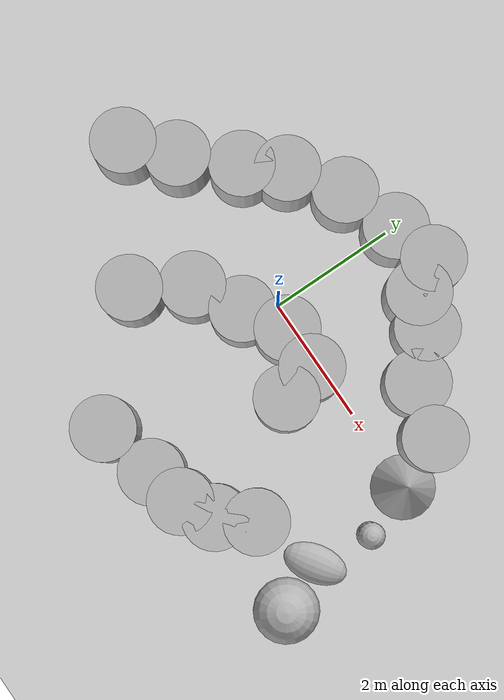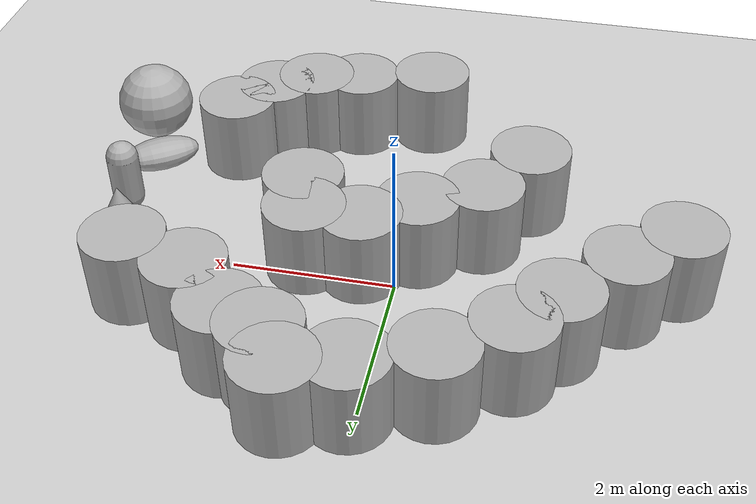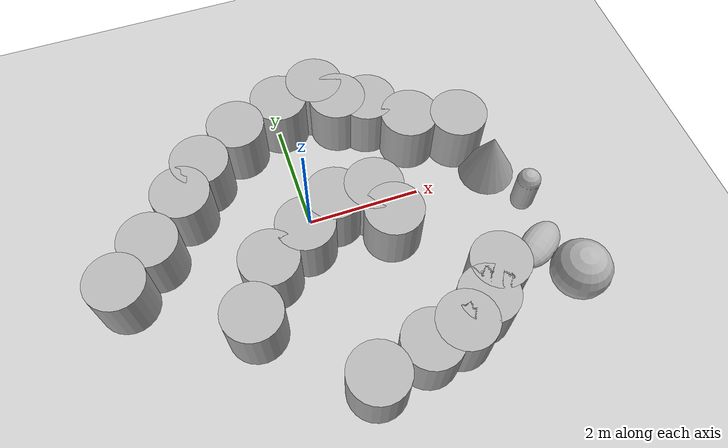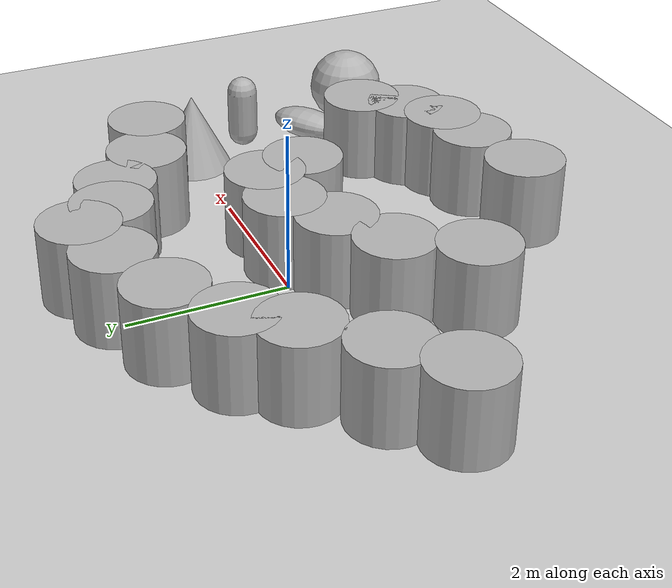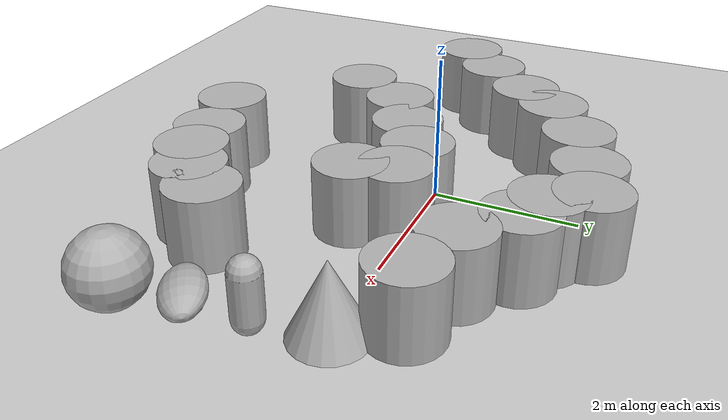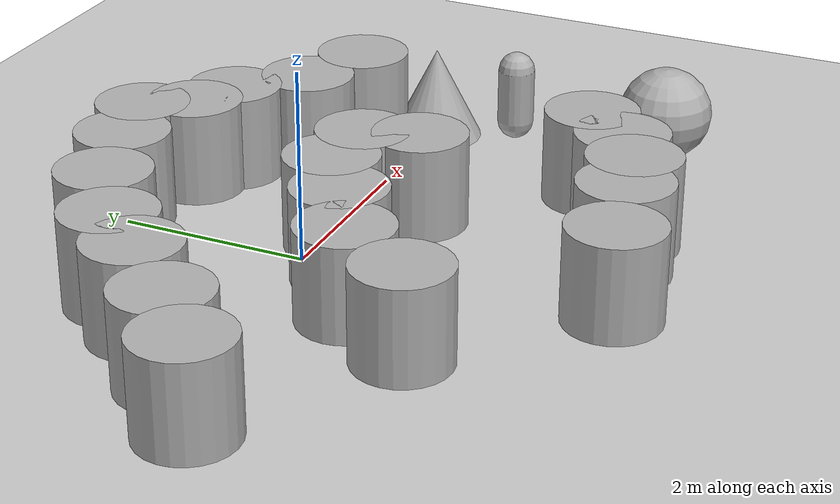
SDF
<sdf version='1.12'>
  <world name='empty'>
    <plugin filename="gz-sim-physics-system" name="gz::sim::systems::Physics"/>
    <plugin filename="gz-sim-user-commands-system" name="gz::sim::systems::UserCommands"/>
    <plugin filename="gz-sim-scene-broadcaster-system" name="gz::sim::systems::SceneBroadcaster"/>
    <plugin filename="gz-sim-sensors-system" name="gz::sim::systems::Sensors"/>
    <plugin filename="gz-sim-contact-system" name="gz::sim::systems::Contact"/>

    <physics name='1ms' type='ignored'>
      <max_step_size>0.001</max_step_size>
      <real_time_factor>1</real_time_factor>
      <real_time_update_rate>1000</real_time_update_rate>
    </physics>
    <plugin name='gz::sim::systems::Physics' filename='gz-sim-physics-system'/>
    <plugin name='gz::sim::systems::UserCommands' filename='gz-sim-user-commands-system'/>
    <plugin name='gz::sim::systems::SceneBroadcaster' filename='gz-sim-scene-broadcaster-system'/>
    <plugin name='gz::sim::systems::Contact' filename='gz-sim-contact-system'/>
    <gravity>0 0 -9.8000000000000007</gravity>
    <magnetic_field>5.5644999999999998e-06 2.2875799999999999e-05 -4.2388400000000002e-05</magnetic_field>
    <atmosphere type='adiabatic'/>
    <scene>
      <ambient>0.400000006 0.400000006 0.400000006 1</ambient>
      <background>0.699999988 0.699999988 0.699999988 1</background>
      <shadows>true</shadows>
    </scene>
    <model name='ground_plane'>
      <static>true</static>
      <link name='link'>
        <collision name='collision'>
          <geometry>
            <plane>
              <normal>0 0 1</normal>
              <size>100 100</size>
            </plane>
          </geometry>
          <surface>
            <friction>
              <ode/>
            </friction>
            <bounce/>
            <contact/>
          </surface>
        </collision>
        <visual name='visual'>
          <geometry>
            <plane>
              <normal>0 0 1</normal>
              <size>100 100</size>
            </plane>
          </geometry>
          <material>
            <ambient>0.800000012 0.800000012 0.800000012 1</ambient>
            <diffuse>0.800000012 0.800000012 0.800000012 1</diffuse>
            <specular>0.800000012 0.800000012 0.800000012 1</specular>
          </material>
        </visual>
        <pose>0 0 0 0 0 0</pose>
        <inertial>
          <pose>0 0 0 0 0 0</pose>
          <mass>1</mass>
          <inertia>
            <ixx>1</ixx>
            <ixy>0</ixy>
            <ixz>0</ixz>
            <iyy>1</iyy>
            <iyz>0</iyz>
            <izz>1</izz>
          </inertia>
        </inertial>
        <enable_wind>false</enable_wind>
      </link>
      <pose>0 0 0 0 0 0</pose>
      <self_collide>false</self_collide>
    </model>
    <model name='cylinder'>
      <pose>-1.9762860932259134 0.69040135329029173 0.49999909530379527 7.8007198747807744e-07 -2.2047766724975244e-06 0.011959792262678981</pose>
      <link name='cylinder_link'>
        <inertial>
          <inertia>
            <ixx>0.14580000000000001</ixx>
            <ixy>0</ixy>
            <ixz>0</ixz>
            <iyy>0.14580000000000001</iyy>
            <iyz>0</iyz>
            <izz>0.125</izz>
          </inertia>
          <mass>1</mass>
          <pose>0 0 0 0 0 0</pose>
        </inertial>
        <collision name='cylinder_collision'>
          <geometry>
            <cylinder>
              <radius>0.5</radius>
              <length>1</length>
            </cylinder>
          </geometry>
          <surface>
            <friction>
              <ode/>
            </friction>
            <bounce/>
            <contact/>
          </surface>
        </collision>
        <visual name='cylinder_visual'>
          <geometry>
            <cylinder>
              <radius>0.5</radius>
              <length>1</length>
            </cylinder>
          </geometry>
          <material>
            <ambient>0.300000012 0.300000012 0.300000012 1</ambient>
            <diffuse>0.699999988 0.699999988 0.699999988 1</diffuse>
            <specular>1 1 1 1</specular>
          </material>
        </visual>
        <pose>0 0 0 0 0 0</pose>
        <enable_wind>false</enable_wind>
      </link>
      <static>false</static>
      <self_collide>false</self_collide>
    </model>
    <model name='cylinder_0'>
      <pose>-2.6429733115350551 -0.013809797040746252 0.49999569121287812 4.005344996797173e-06 -5.5513292539265226e-06 0.0046162359971371227</pose>
      <link name='cylinder_link'>
        <inertial>
          <inertia>
            <ixx>0.14580000000000001</ixx>
            <ixy>0</ixy>
            <ixz>0</ixz>
            <iyy>0.14580000000000001</iyy>
            <iyz>0</iyz>
            <izz>0.125</izz>
          </inertia>
          <mass>1</mass>
          <pose>0 0 0 0 0 0</pose>
        </inertial>
        <collision name='cylinder_collision'>
          <geometry>
            <cylinder>
              <radius>0.5</radius>
              <length>1</length>
            </cylinder>
          </geometry>
          <surface>
            <friction>
              <ode/>
            </friction>
            <bounce/>
            <contact/>
          </surface>
        </collision>
        <visual name='cylinder_visual'>
          <geometry>
            <cylinder>
              <radius>0.5</radius>
              <length>1</length>
            </cylinder>
          </geometry>
          <material>
            <ambient>0.300000012 0.300000012 0.300000012 1</ambient>
            <diffuse>0.699999988 0.699999988 0.699999988 1</diffuse>
            <specular>1 1 1 1</specular>
          </material>
        </visual>
        <pose>0 0 0 0 0 0</pose>
        <enable_wind>false</enable_wind>
      </link>
      <static>false</static>
      <self_collide>false</self_collide>
    </model>
    <model name='cylinder_1'>
      <pose>-3.2558764979790302 -0.56998707025913842 0.50000138259239402 5.0220630579390469e-06 -3.9769352921638421e-06 -0.022826265024882546</pose>
      <link name='cylinder_link'>
        <inertial>
          <inertia>
            <ixx>0.14580000000000001</ixx>
            <ixy>0</ixy>
            <ixz>0</ixz>
            <iyy>0.14580000000000001</iyy>
            <iyz>0</iyz>
            <izz>0.125</izz>
          </inertia>
          <mass>1</mass>
          <pose>0 0 0 0 0 0</pose>
        </inertial>
        <collision name='cylinder_collision'>
          <geometry>
            <cylinder>
              <radius>0.5</radius>
              <length>1</length>
            </cylinder>
          </geometry>
          <surface>
            <friction>
              <ode/>
            </friction>
            <bounce/>
            <contact/>
          </surface>
        </collision>
        <visual name='cylinder_visual'>
          <geometry>
            <cylinder>
              <radius>0.5</radius>
              <length>1</length>
            </cylinder>
          </geometry>
          <material>
            <ambient>0.300000012 0.300000012 0.300000012 1</ambient>
            <diffuse>0.699999988 0.699999988 0.699999988 1</diffuse>
            <specular>1 1 1 1</specular>
          </material>
        </visual>
        <pose>0 0 0 0 0 0</pose>
        <enable_wind>false</enable_wind>
      </link>
      <static>false</static>
      <self_collide>false</self_collide>
    </model>
    <model name='cylinder_2'>
      <pose>-1.5365996924310779 1.2117122792620816 0.49999847086126498 1.0684121526571945e-06 4.1593079175355603e-06 0.0095072753371441918</pose>
      <link name='cylinder_link'>
        <inertial>
          <inertia>
            <ixx>0.14580000000000001</ixx>
            <ixy>0</ixy>
            <ixz>0</ixz>
            <iyy>0.14580000000000001</iyy>
            <iyz>0</iyz>
            <izz>0.125</izz>
          </inertia>
          <mass>1</mass>
          <pose>0 0 0 0 0 0</pose>
        </inertial>
        <collision name='cylinder_collision'>
          <geometry>
            <cylinder>
              <radius>0.5</radius>
              <length>1</length>
            </cylinder>
          </geometry>
          <surface>
            <friction>
              <ode/>
            </friction>
            <bounce/>
            <contact/>
          </surface>
        </collision>
        <visual name='cylinder_visual'>
          <geometry>
            <cylinder>
              <radius>0.5</radius>
              <length>1</length>
            </cylinder>
          </geometry>
          <material>
            <ambient>0.300000012 0.300000012 0.300000012 1</ambient>
            <diffuse>0.699999988 0.699999988 0.699999988 1</diffuse>
            <specular>1 1 1 1</specular>
          </material>
        </visual>
        <pose>0 0 0 0 0 0</pose>
        <enable_wind>false</enable_wind>
      </link>
      <static>false</static>
      <self_collide>false</self_collide>
    </model>
    <model name='cylinder_3'>
      <pose>-0.78632597206776556 1.7349095515431225 0.49999782776528706 5.0129090234880614e-06 -2.6312846825480979e-06 -0.011264135074391684</pose>
      <link name='cylinder_link'>
        <inertial>
          <inertia>
            <ixx>0.14580000000000001</ixx>
            <ixy>0</ixy>
            <ixz>0</ixz>
            <iyy>0.14580000000000001</iyy>
            <iyz>0</iyz>
            <izz>0.125</izz>
          </inertia>
          <mass>1</mass>
          <pose>0 0 0 0 0 0</pose>
        </inertial>
        <collision name='cylinder_collision'>
          <geometry>
            <cylinder>
              <radius>0.5</radius>
              <length>1</length>
            </cylinder>
          </geometry>
          <surface>
            <friction>
              <ode/>
            </friction>
            <bounce/>
            <contact/>
          </surface>
        </collision>
        <visual name='cylinder_visual'>
          <geometry>
            <cylinder>
              <radius>0.5</radius>
              <length>1</length>
            </cylinder>
          </geometry>
          <material>
            <ambient>0.300000012 0.300000012 0.300000012 1</ambient>
            <diffuse>0.699999988 0.699999988 0.699999988 1</diffuse>
            <specular>1 1 1 1</specular>
          </material>
        </visual>
        <pose>0 0 0 0 0 0</pose>
        <enable_wind>false</enable_wind>
      </link>
      <static>false</static>
      <self_collide>false</self_collide>
    </model>
    <model name='cylinder_4'>
      <pose>0.78655141512589766 2.239844271421497 0.50000124387346956 -6.8727449360493471e-06 4.893297159177249e-06 0.016314562144688037</pose>
      <link name='cylinder_link'>
        <inertial>
          <inertia>
            <ixx>0.14580000000000001</ixx>
            <ixy>0</ixy>
            <ixz>0</ixz>
            <iyy>0.14580000000000001</iyy>
            <iyz>0</iyz>
            <izz>0.125</izz>
          </inertia>
          <mass>1</mass>
          <pose>0 0 0 0 0 0</pose>
        </inertial>
        <collision name='cylinder_collision'>
          <geometry>
            <cylinder>
              <radius>0.5</radius>
              <length>1</length>
            </cylinder>
          </geometry>
          <surface>
            <friction>
              <ode/>
            </friction>
            <bounce/>
            <contact/>
          </surface>
        </collision>
        <visual name='cylinder_visual'>
          <geometry>
            <cylinder>
              <radius>0.5</radius>
              <length>1</length>
            </cylinder>
          </geometry>
          <material>
            <ambient>0.300000012 0.300000012 0.300000012 1</ambient>
            <diffuse>0.699999988 0.699999988 0.699999988 1</diffuse>
            <specular>1 1 1 1</specular>
          </material>
        </visual>
        <pose>0 0 0 0 0 0</pose>
        <enable_wind>false</enable_wind>
      </link>
      <static>false</static>
      <self_collide>false</self_collide>
    </model>
    <model name='cylinder_5'>
      <pose>0.076821434768917826 2.0520209042307456 0.49999559303776342 3.8986044008958061e-06 -9.5678555833081369e-06 -0.0043199915631974865</pose>
      <link name='cylinder_link'>
        <inertial>
          <inertia>
            <ixx>0.14580000000000001</ixx>
            <ixy>0</ixy>
            <ixz>0</ixz>
            <iyy>0.14580000000000001</iyy>
            <iyz>0</iyz>
            <izz>0.125</izz>
          </inertia>
          <mass>1</mass>
          <pose>0 0 0 0 0 0</pose>
        </inertial>
        <collision name='cylinder_collision'>
          <geometry>
            <cylinder>
              <radius>0.5</radius>
              <length>1</length>
            </cylinder>
          </geometry>
          <surface>
            <friction>
              <ode/>
            </friction>
            <bounce/>
            <contact/>
          </surface>
        </collision>
        <visual name='cylinder_visual'>
          <geometry>
            <cylinder>
              <radius>0.5</radius>
              <length>1</length>
            </cylinder>
          </geometry>
          <material>
            <ambient>0.300000012 0.300000012 0.300000012 1</ambient>
            <diffuse>0.699999988 0.699999988 0.699999988 1</diffuse>
            <specular>1 1 1 1</specular>
          </material>
        </visual>
        <pose>0 0 0 0 0 0</pose>
        <enable_wind>false</enable_wind>
      </link>
      <static>false</static>
      <self_collide>false</self_collide>
    </model>
    <model name='cylinder_6'>
      <pose>1.0796420631324288 1.7763377961806321 0.50000019598924572 -3.8125318810145128e-07 -6.8935358275499052e-07 -0.0079551596541924639</pose>
      <link name='cylinder_link'>
        <inertial>
          <inertia>
            <ixx>0.14580000000000001</ixx>
            <ixy>0</ixy>
            <ixz>0</ixz>
            <iyy>0.14580000000000001</iyy>
            <iyz>0</iyz>
            <izz>0.125</izz>
          </inertia>
          <mass>1</mass>
          <pose>0 0 0 0 0 0</pose>
        </inertial>
        <collision name='cylinder_collision'>
          <geometry>
            <cylinder>
              <radius>0.5</radius>
              <length>1</length>
            </cylinder>
          </geometry>
          <surface>
            <friction>
              <ode/>
            </friction>
            <bounce/>
            <contact/>
          </surface>
        </collision>
        <visual name='cylinder_visual'>
          <geometry>
            <cylinder>
              <radius>0.5</radius>
              <length>1</length>
            </cylinder>
          </geometry>
          <material>
            <ambient>0.300000012 0.300000012 0.300000012 1</ambient>
            <diffuse>0.699999988 0.699999988 0.699999988 1</diffuse>
            <specular>1 1 1 1</specular>
          </material>
        </visual>
        <pose>0 0 0 0 0 0</pose>
        <enable_wind>false</enable_wind>
      </link>
      <static>false</static>
      <self_collide>false</self_collide>
    </model>
    <model name='cylinder_7'>
      <pose>-1.3814271443621475 -1.7208808653317076 0.50000188535532641 6.5285589071544028e-06 -2.7036633601598784e-06 0.0079402219255832098</pose>
      <link name='cylinder_link'>
        <inertial>
          <inertia>
            <ixx>0.14580000000000001</ixx>
            <ixy>0</ixy>
            <ixz>0</ixz>
            <iyy>0.14580000000000001</iyy>
            <iyz>0</iyz>
            <izz>0.125</izz>
          </inertia>
          <mass>1</mass>
          <pose>0 0 0 0 0 0</pose>
        </inertial>
        <collision name='cylinder_collision'>
          <geometry>
            <cylinder>
              <radius>0.5</radius>
              <length>1</length>
            </cylinder>
          </geometry>
          <surface>
            <friction>
              <ode/>
            </friction>
            <bounce/>
            <contact/>
          </surface>
        </collision>
        <visual name='cylinder_visual'>
          <geometry>
            <cylinder>
              <radius>0.5</radius>
              <length>1</length>
            </cylinder>
          </geometry>
          <material>
            <ambient>0.300000012 0.300000012 0.300000012 1</ambient>
            <diffuse>0.699999988 0.699999988 0.699999988 1</diffuse>
            <specular>1 1 1 1</specular>
          </material>
        </visual>
        <pose>0 0 0 0 0 0</pose>
        <enable_wind>false</enable_wind>
      </link>
      <static>false</static>
      <self_collide>false</self_collide>
    </model>
    <model name='cylinder_8'>
      <pose>-0.89915172950892397 -0.9228489590765433 0.49999813973350093 6.3691705166424526e-06 3.5784308867551583e-07 0.0046774452948128266</pose>
      <link name='cylinder_link'>
        <inertial>
          <inertia>
            <ixx>0.14580000000000001</ixx>
            <ixy>0</ixy>
            <ixz>0</ixz>
            <iyy>0.14580000000000001</iyy>
            <iyz>0</iyz>
            <izz>0.125</izz>
          </inertia>
          <mass>1</mass>
          <pose>0 0 0 0 0 0</pose>
        </inertial>
        <collision name='cylinder_collision'>
          <geometry>
            <cylinder>
              <radius>0.5</radius>
              <length>1</length>
            </cylinder>
          </geometry>
          <surface>
            <friction>
              <ode/>
            </friction>
            <bounce/>
            <contact/>
          </surface>
        </collision>
        <visual name='cylinder_visual'>
          <geometry>
            <cylinder>
              <radius>0.5</radius>
              <length>1</length>
            </cylinder>
          </geometry>
          <material>
            <ambient>0.300000012 0.300000012 0.300000012 1</ambient>
            <diffuse>0.699999988 0.699999988 0.699999988 1</diffuse>
            <specular>1 1 1 1</specular>
          </material>
        </visual>
        <pose>0 0 0 0 0 0</pose>
        <enable_wind>false</enable_wind>
      </link>
      <static>false</static>
      <self_collide>false</self_collide>
    </model>
    <model name='cylinder_9'>
      <pose>-0.1860328131376188 -0.51991396688890668 0.49999985104384348 1.5023880409608223e-07 -3.6131556412383512e-07 -0.00018278242512950678</pose>
      <link name='cylinder_link'>
        <inertial>
          <inertia>
            <ixx>0.14580000000000001</ixx>
            <ixy>0</ixy>
            <ixz>0</ixz>
            <iyy>0.14580000000000001</iyy>
            <iyz>0</iyz>
            <izz>0.125</izz>
          </inertia>
          <mass>1</mass>
          <pose>0 0 0 0 0 0</pose>
        </inertial>
        <collision name='cylinder_collision'>
          <geometry>
            <cylinder>
              <radius>0.5</radius>
              <length>1</length>
            </cylinder>
          </geometry>
          <surface>
            <friction>
              <ode/>
            </friction>
            <bounce/>
            <contact/>
          </surface>
        </collision>
        <visual name='cylinder_visual'>
          <geometry>
            <cylinder>
              <radius>0.5</radius>
              <length>1</length>
            </cylinder>
          </geometry>
          <material>
            <ambient>0.300000012 0.300000012 0.300000012 1</ambient>
            <diffuse>0.699999988 0.699999988 0.699999988 1</diffuse>
            <specular>1 1 1 1</specular>
          </material>
        </visual>
        <pose>0 0 0 0 0 0</pose>
        <enable_wind>false</enable_wind>
      </link>
      <static>false</static>
      <self_collide>false</self_collide>
    </model>
    <model name='cylinder_10'>
      <pose>0.42920838925753013 -0.13218409234552927 0.49999977906264004 -2.8792867144846917e-06 4.0647830910670031e-06 -0.0041092993602877981</pose>
      <link name='cylinder_link'>
        <inertial>
          <inertia>
            <ixx>0.14580000000000001</ixx>
            <ixy>0</ixy>
            <ixz>0</ixz>
            <iyy>0.14580000000000001</iyy>
            <iyz>0</iyz>
            <izz>0.125</izz>
          </inertia>
          <mass>1</mass>
          <pose>0 0 0 0 0 0</pose>
        </inertial>
        <collision name='cylinder_collision'>
          <geometry>
            <cylinder>
              <radius>0.5</radius>
              <length>1</length>
            </cylinder>
          </geometry>
          <surface>
            <friction>
              <ode/>
            </friction>
            <bounce/>
            <contact/>
          </surface>
        </collision>
        <visual name='cylinder_visual'>
          <geometry>
            <cylinder>
              <radius>0.5</radius>
              <length>1</length>
            </cylinder>
          </geometry>
          <material>
            <ambient>0.300000012 0.300000012 0.300000012 1</ambient>
            <diffuse>0.699999988 0.699999988 0.699999988 1</diffuse>
            <specular>1 1 1 1</specular>
          </material>
        </visual>
        <pose>0 0 0 0 0 0</pose>
        <enable_wind>false</enable_wind>
      </link>
      <static>false</static>
      <self_collide>false</self_collide>
    </model>
    <model name='cylinder_11'>
      <pose>1.1073928579156167 -0.15459871433947053 0.49999922662699875 -3.1109600371470438e-06 7.4498295820858495e-06 -0.014954746051568022</pose>
      <link name='cylinder_link'>
        <inertial>
          <inertia>
            <ixx>0.14580000000000001</ixx>
            <ixy>0</ixy>
            <ixz>0</ixz>
            <iyy>0.14580000000000001</iyy>
            <iyz>0</iyz>
            <izz>0.125</izz>
          </inertia>
          <mass>1</mass>
          <pose>0 0 0 0 0 0</pose>
        </inertial>
        <collision name='cylinder_collision'>
          <geometry>
            <cylinder>
              <radius>0.5</radius>
              <length>1</length>
            </cylinder>
          </geometry>
          <surface>
            <friction>
              <ode/>
            </friction>
            <bounce/>
            <contact/>
          </surface>
        </collision>
        <visual name='cylinder_visual'>
          <geometry>
            <cylinder>
              <radius>0.5</radius>
              <length>1</length>
            </cylinder>
          </geometry>
          <material>
            <ambient>0.300000012 0.300000012 0.300000012 1</ambient>
            <diffuse>0.699999988 0.699999988 0.699999988 1</diffuse>
            <specular>1 1 1 1</specular>
          </material>
        </visual>
        <pose>0 0 0 0 0 0</pose>
        <enable_wind>false</enable_wind>
      </link>
      <static>false</static>
      <self_collide>false</self_collide>
    </model>
    <model name='cylinder_12'>
      <pose>1.2639772421753792 -0.71655547541685172 0.50000022654562659 6.7854997384757193e-07 2.7475232259374405e-07 -0.00019342997180566245</pose>
      <link name='cylinder_link'>
        <inertial>
          <inertia>
            <ixx>0.14580000000000001</ixx>
            <ixy>0</ixy>
            <ixz>0</ixz>
            <iyy>0.14580000000000001</iyy>
            <iyz>0</iyz>
            <izz>0.125</izz>
          </inertia>
          <mass>1</mass>
          <pose>0 0 0 0 0 0</pose>
        </inertial>
        <collision name='cylinder_collision'>
          <geometry>
            <cylinder>
              <radius>0.5</radius>
              <length>1</length>
            </cylinder>
          </geometry>
          <surface>
            <friction>
              <ode/>
            </friction>
            <bounce/>
            <contact/>
          </surface>
        </collision>
        <visual name='cylinder_visual'>
          <geometry>
            <cylinder>
              <radius>0.5</radius>
              <length>1</length>
            </cylinder>
          </geometry>
          <material>
            <ambient>0.300000012 0.300000012 0.300000012 1</ambient>
            <diffuse>0.699999988 0.699999988 0.699999988 1</diffuse>
            <specular>1 1 1 1</specular>
          </material>
        </visual>
        <pose>0 0 0 0 0 0</pose>
        <enable_wind>false</enable_wind>
      </link>
      <static>false</static>
      <self_collide>false</self_collide>
    </model>
    <model name='cylinder_13'>
      <pose>2.5211478394658742 -2.1034614413383093 0.50000003436734308 -4.2212259656551967e-08 2.2807492711052629e-08 0.019142331812402446</pose>
      <link name='cylinder_link'>
        <inertial>
          <inertia>
            <ixx>0.14580000000000001</ixx>
            <ixy>0</ixy>
            <ixz>0</ixz>
            <iyy>0.14580000000000001</iyy>
            <iyz>0</iyz>
            <izz>0.125</izz>
          </inertia>
          <mass>1</mass>
          <pose>0 0 0 0 0 0</pose>
        </inertial>
        <collision name='cylinder_collision'>
          <geometry>
            <cylinder>
              <radius>0.5</radius>
              <length>1</length>
            </cylinder>
          </geometry>
          <surface>
            <friction>
              <ode/>
            </friction>
            <bounce/>
            <contact/>
          </surface>
        </collision>
        <visual name='cylinder_visual'>
          <geometry>
            <cylinder>
              <radius>0.5</radius>
              <length>1</length>
            </cylinder>
          </geometry>
          <material>
            <ambient>0.300000012 0.300000012 0.300000012 1</ambient>
            <diffuse>0.699999988 0.699999988 0.699999988 1</diffuse>
            <specular>1 1 1 1</specular>
          </material>
        </visual>
        <pose>0 0 0 0 0 0</pose>
        <enable_wind>false</enable_wind>
      </link>
      <static>false</static>
      <self_collide>false</self_collide>
    </model>
    <model name='cylinder_14'>
      <pose>2.1219789529891369 -2.5690834266119089 0.50000003976717844 -1.0433291479369801e-07 2.4613612586082871e-07 0.00179753611537779</pose>
      <link name='cylinder_link'>
        <inertial>
          <inertia>
            <ixx>0.14580000000000001</ixx>
            <ixy>0</ixy>
            <ixz>0</ixz>
            <iyy>0.14580000000000001</iyy>
            <iyz>0</iyz>
            <izz>0.125</izz>
          </inertia>
          <mass>1</mass>
          <pose>0 0 0 0 0 0</pose>
        </inertial>
        <collision name='cylinder_collision'>
          <geometry>
            <cylinder>
              <radius>0.5</radius>
              <length>1</length>
            </cylinder>
          </geometry>
          <surface>
            <friction>
              <ode/>
            </friction>
            <bounce/>
            <contact/>
          </surface>
        </collision>
        <visual name='cylinder_visual'>
          <geometry>
            <cylinder>
              <radius>0.5</radius>
              <length>1</length>
            </cylinder>
          </geometry>
          <material>
            <ambient>0.300000012 0.300000012 0.300000012 1</ambient>
            <diffuse>0.699999988 0.699999988 0.699999988 1</diffuse>
            <specular>1 1 1 1</specular>
          </material>
        </visual>
        <pose>0 0 0 0 0 0</pose>
        <enable_wind>false</enable_wind>
      </link>
      <static>false</static>
      <self_collide>false</self_collide>
    </model>
    <model name='cylinder_15'>
      <pose>1.6424765872895952 -2.8584375475776485 0.5000004301633324 6.9579177057041007e-07 -6.4446634313011053e-07 -0.00023712285672236816</pose>
      <link name='cylinder_link'>
        <inertial>
          <inertia>
            <ixx>0.14580000000000001</ixx>
            <ixy>0</ixy>
            <ixz>0</ixz>
            <iyy>0.14580000000000001</iyy>
            <iyz>0</iyz>
            <izz>0.125</izz>
          </inertia>
          <mass>1</mass>
          <pose>0 0 0 0 0 0</pose>
        </inertial>
        <collision name='cylinder_collision'>
          <geometry>
            <cylinder>
              <radius>0.5</radius>
              <length>1</length>
            </cylinder>
          </geometry>
          <surface>
            <friction>
              <ode/>
            </friction>
            <bounce/>
            <contact/>
          </surface>
        </collision>
        <visual name='cylinder_visual'>
          <geometry>
            <cylinder>
              <radius>0.5</radius>
              <length>1</length>
            </cylinder>
          </geometry>
          <material>
            <ambient>0.300000012 0.300000012 0.300000012 1</ambient>
            <diffuse>0.699999988 0.699999988 0.699999988 1</diffuse>
            <specular>1 1 1 1</specular>
          </material>
        </visual>
        <pose>0 0 0 0 0 0</pose>
        <enable_wind>false</enable_wind>
      </link>
      <static>false</static>
      <self_collide>false</self_collide>
    </model>
    <model name='cylinder_16'>
      <pose>1.0478343261048917 -2.9720232598317358 0.49999511296024085 1.8873978672044576e-06 -6.4308950390831388e-06 -0.000364881655271287</pose>
      <link name='cylinder_link'>
        <inertial>
          <inertia>
            <ixx>0.14580000000000001</ixx>
            <ixy>0</ixy>
            <ixz>0</ixz>
            <iyy>0.14580000000000001</iyy>
            <iyz>0</iyz>
            <izz>0.125</izz>
          </inertia>
          <mass>1</mass>
          <pose>0 0 0 0 0 0</pose>
        </inertial>
        <collision name='cylinder_collision'>
          <geometry>
            <cylinder>
              <radius>0.5</radius>
              <length>1</length>
            </cylinder>
          </geometry>
          <surface>
            <friction>
              <ode/>
            </friction>
            <bounce/>
            <contact/>
          </surface>
        </collision>
        <visual name='cylinder_visual'>
          <geometry>
            <cylinder>
              <radius>0.5</radius>
              <length>1</length>
            </cylinder>
          </geometry>
          <material>
            <ambient>0.300000012 0.300000012 0.300000012 1</ambient>
            <diffuse>0.699999988 0.699999988 0.699999988 1</diffuse>
            <specular>1 1 1 1</specular>
          </material>
        </visual>
        <pose>0 0 0 0 0 0</pose>
        <enable_wind>false</enable_wind>
      </link>
      <static>false</static>
      <self_collide>false</self_collide>
    </model>
    <model name='cylinder_17'>
      <pose>0.12168607575076734 -3.1958637381012447 0.50000097672766375 2.6499561648765815e-06 -8.167358733509066e-06 -0.00050434412273400297</pose>
      <link name='cylinder_link'>
        <inertial>
          <inertia>
            <ixx>0.14580000000000001</ixx>
            <ixy>0</ixy>
            <ixz>0</ixz>
            <iyy>0.14580000000000001</iyy>
            <iyz>0</iyz>
            <izz>0.125</izz>
          </inertia>
          <mass>1</mass>
          <pose>0 0 0 0 0 0</pose>
        </inertial>
        <collision name='cylinder_collision'>
          <geometry>
            <cylinder>
              <radius>0.5</radius>
              <length>1</length>
            </cylinder>
          </geometry>
          <surface>
            <friction>
              <ode/>
            </friction>
            <bounce/>
            <contact/>
          </surface>
        </collision>
        <visual name='cylinder_visual'>
          <geometry>
            <cylinder>
              <radius>0.5</radius>
              <length>1</length>
            </cylinder>
          </geometry>
          <material>
            <ambient>0.300000012 0.300000012 0.300000012 1</ambient>
            <diffuse>0.699999988 0.699999988 0.699999988 1</diffuse>
            <specular>1 1 1 1</specular>
          </material>
        </visual>
        <pose>0 0 0 0 0 0</pose>
        <enable_wind>false</enable_wind>
      </link>
      <static>false</static>
      <self_collide>false</self_collide>
    </model>
    <model name='cylinder_18'>
      <pose>1.5796460869217621 1.5794535571002104 0.49999971896749246 -9.9822477371549276e-07 -5.6261135795014548e-07 -0.00095246214619126217</pose>
      <link name='cylinder_link'>
        <inertial>
          <inertia>
            <ixx>0.14580000000000001</ixx>
            <ixy>0</ixy>
            <ixz>0</ixz>
            <iyy>0.14580000000000001</iyy>
            <iyz>0</iyz>
            <izz>0.125</izz>
          </inertia>
          <mass>1</mass>
          <pose>0 0 0 0 0 0</pose>
        </inertial>
        <collision name='cylinder_collision'>
          <geometry>
            <cylinder>
              <radius>0.5</radius>
              <length>1</length>
            </cylinder>
          </geometry>
          <surface>
            <friction>
              <ode/>
            </friction>
            <bounce/>
            <contact/>
          </surface>
        </collision>
        <visual name='cylinder_visual'>
          <geometry>
            <cylinder>
              <radius>0.5</radius>
              <length>1</length>
            </cylinder>
          </geometry>
          <material>
            <ambient>0.300000012 0.300000012 0.300000012 1</ambient>
            <diffuse>0.699999988 0.699999988 0.699999988 1</diffuse>
            <specular>1 1 1 1</specular>
          </material>
        </visual>
        <pose>0 0 0 0 0 0</pose>
        <enable_wind>false</enable_wind>
      </link>
      <static>false</static>
      <self_collide>false</self_collide>
    </model>
    <model name='cylinder_19'>
      <pose>2.1699033586833854 1.0097118782075567 0.49999949455228093 3.4186045631854167e-06 -2.3386265436767169e-07 0.0028941472091278272</pose>
      <link name='cylinder_link'>
        <inertial>
          <inertia>
            <ixx>0.14580000000000001</ixx>
            <ixy>0</ixy>
            <ixz>0</ixz>
            <iyy>0.14580000000000001</iyy>
            <iyz>0</iyz>
            <izz>0.125</izz>
          </inertia>
          <mass>1</mass>
          <pose>0 0 0 0 0 0</pose>
        </inertial>
        <collision name='cylinder_collision'>
          <geometry>
            <cylinder>
              <radius>0.5</radius>
              <length>1</length>
            </cylinder>
          </geometry>
          <surface>
            <friction>
              <ode/>
            </friction>
            <bounce/>
            <contact/>
          </surface>
        </collision>
        <visual name='cylinder_visual'>
          <geometry>
            <cylinder>
              <radius>0.5</radius>
              <length>1</length>
            </cylinder>
          </geometry>
          <material>
            <ambient>0.300000012 0.300000012 0.300000012 1</ambient>
            <diffuse>0.699999988 0.699999988 0.699999988 1</diffuse>
            <specular>1 1 1 1</specular>
          </material>
        </visual>
        <pose>0 0 0 0 0 0</pose>
        <enable_wind>false</enable_wind>
      </link>
      <static>false</static>
      <self_collide>false</self_collide>
    </model>
    <model name='cylinder_20'>
      <pose>2.9916713003011823 0.74565456363652571 0.50011839867448749 -0.00023262905039389558 7.434303383227455e-05 0.0053924160943481046</pose>
      <link name='cylinder_link'>
        <inertial>
          <inertia>
            <ixx>0.14580000000000001</ixx>
            <ixy>0</ixy>
            <ixz>0</ixz>
            <iyy>0.14580000000000001</iyy>
            <iyz>0</iyz>
            <izz>0.125</izz>
          </inertia>
          <mass>1</mass>
          <pose>0 0 0 0 0 0</pose>
        </inertial>
        <collision name='cylinder_collision'>
          <geometry>
            <cylinder>
              <radius>0.5</radius>
              <length>1</length>
            </cylinder>
          </geometry>
          <surface>
            <friction>
              <ode/>
            </friction>
            <bounce/>
            <contact/>
          </surface>
        </collision>
        <visual name='cylinder_visual'>
          <geometry>
            <cylinder>
              <radius>0.5</radius>
              <length>1</length>
            </cylinder>
          </geometry>
          <material>
            <ambient>0.300000012 0.300000012 0.300000012 1</ambient>
            <diffuse>0.699999988 0.699999988 0.699999988 1</diffuse>
            <specular>1 1 1 1</specular>
          </material>
        </visual>
        <pose>0 0 0 0 0 0</pose>
        <enable_wind>false</enable_wind>
      </link>
      <static>false</static>
      <self_collide>false</self_collide>
    </model>
    <model name='cone'>
      <pose>3.3523726631163058 0.0098602700247021127 0.49999999503548187 -1.0898660568151879e-09 -9.1672918255680045e-09 -0.014531224927572868</pose>
      <link name='cone_link'>
        <inertial>
          <inertia>
            <ixx>0.074999999999999997</ixx>
            <ixy>0</ixy>
            <ixz>0</ixz>
            <iyy>0.074999999999999997</iyy>
            <iyz>0</iyz>
            <izz>0.074999999999999997</izz>
          </inertia>
          <mass>1</mass>
          <pose>0 0 0 0 0 0</pose>
        </inertial>
        <collision name='cone_collision'>
          <geometry>
            <cone>
              <radius>0.5</radius>
              <length>1</length>
            </cone>
          </geometry>
          <surface>
            <friction>
              <ode/>
            </friction>
            <bounce/>
            <contact/>
          </surface>
        </collision>
        <visual name='cone_visual'>
          <geometry>
            <cone>
              <radius>0.5</radius>
              <length>1</length>
            </cone>
          </geometry>
          <material>
            <ambient>0.300000012 0.300000012 0.300000012 1</ambient>
            <diffuse>0.699999988 0.699999988 0.699999988 1</diffuse>
            <specular>1 1 1 1</specular>
          </material>
        </visual>
        <pose>0 0 0 0 0 0</pose>
        <enable_wind>false</enable_wind>
      </link>
      <static>false</static>
      <self_collide>false</self_collide>
    </model>
    <model name='ellipsoid'>
      <pose>3.5441977442784984 -1.7449687932588118 0.18666846056983558 1.5707963011064208 -1.3774880015790958 -0.98369366597229224</pose>
      <link name='ellipsoid_link'>
        <inertial>
          <inertia>
            <ixx>0.068000000000000005</ixx>
            <ixy>0</ixy>
            <ixz>0</ixz>
            <iyy>0.058000000000000003</iyy>
            <iyz>0</iyz>
            <izz>0.025999999999999999</izz>
          </inertia>
          <mass>1</mass>
          <pose>0 0 0 0 0 0</pose>
        </inertial>
        <collision name='ellipsoid_collision'>
          <geometry>
            <ellipsoid>
              <radii>0.20000000000000001 0.29999999999999999 0.5</radii>
            </ellipsoid>
          </geometry>
          <surface>
            <friction>
              <ode/>
            </friction>
            <bounce/>
            <contact/>
          </surface>
        </collision>
        <visual name='ellipsoid_visual'>
          <geometry>
            <ellipsoid>
              <radii>0.20000000000000001 0.29999999999999999 0.5</radii>
            </ellipsoid>
          </geometry>
          <material>
            <ambient>0.300000012 0.300000012 0.300000012 1</ambient>
            <diffuse>0.699999988 0.699999988 0.699999988 1</diffuse>
            <specular>1 1 1 1</specular>
          </material>
        </visual>
        <pose>0 0 0 0 0 0</pose>
        <enable_wind>false</enable_wind>
      </link>
      <static>false</static>
      <self_collide>false</self_collide>
    </model>
    <model name='capsule'>
      <pose>3.6472392398563631 -0.82223172108088072 0.499999999902001 0 0 0</pose>
      <link name='capsule_link'>
        <inertial>
          <inertia>
            <ixx>0.074153999999999998</ixx>
            <ixy>0</ixy>
            <ixz>0</ixz>
            <iyy>0.074153999999999998</iyy>
            <iyz>0</iyz>
            <izz>0.018769000000000001</izz>
          </inertia>
          <mass>1</mass>
          <pose>0 0 0 0 0 0</pose>
        </inertial>
        <collision name='capsule_collision'>
          <geometry>
            <capsule>
              <radius>0.20000000000000001</radius>
              <length>0.59999999999999998</length>
            </capsule>
          </geometry>
          <surface>
            <friction>
              <ode/>
            </friction>
            <bounce/>
            <contact/>
          </surface>
        </collision>
        <visual name='capsule_visual'>
          <geometry>
            <capsule>
              <radius>0.20000000000000001</radius>
              <length>0.59999999999999998</length>
            </capsule>
          </geometry>
          <material>
            <ambient>0.300000012 0.300000012 0.300000012 1</ambient>
            <diffuse>0.699999988 0.699999988 0.699999988 1</diffuse>
            <specular>1 1 1 1</specular>
          </material>
        </visual>
        <pose>0 0 0 0 0 0</pose>
        <enable_wind>false</enable_wind>
      </link>
      <static>false</static>
      <self_collide>false</self_collide>
    </model>
    <model name='sphere'>
      <pose>3.8623938717965443 -2.487360508279882 0.499999999902001 0 0 0</pose>
      <link name='sphere_link'>
        <inertial>
          <inertia>
            <ixx>0.10000000000000001</ixx>
            <ixy>0</ixy>
            <ixz>0</ixz>
            <iyy>0.10000000000000001</iyy>
            <iyz>0</iyz>
            <izz>0.10000000000000001</izz>
          </inertia>
          <mass>1</mass>
          <pose>0 0 0 0 0 0</pose>
        </inertial>
        <collision name='sphere_collision'>
          <geometry>
            <sphere>
              <radius>0.5</radius>
            </sphere>
          </geometry>
          <surface>
            <friction>
              <ode/>
            </friction>
            <bounce/>
            <contact/>
          </surface>
        </collision>
        <visual name='sphere_visual'>
          <geometry>
            <sphere>
              <radius>0.5</radius>
            </sphere>
          </geometry>
          <material>
            <ambient>0.300000012 0.300000012 0.300000012 1</ambient>
            <diffuse>0.699999988 0.699999988 0.699999988 1</diffuse>
            <specular>1 1 1 1</specular>
          </material>
        </visual>
        <pose>0 0 0 0 0 0</pose>
        <enable_wind>false</enable_wind>
      </link>
      <static>false</static>
      <self_collide>false</self_collide>
    </model>
    <light name='sun' type='directional'>
      <pose>0 0 10 0 0 0</pose>
      <cast_shadows>true</cast_shadows>
      <intensity>1</intensity>
      <direction>-0.5 0.10000000000000001 -0.90000000000000002</direction>
      <diffuse>0.800000012 0.800000012 0.800000012 1</diffuse>
      <specular>0.200000003 0.200000003 0.200000003 1</specular>
      <attenuation>
        <range>1000</range>
        <linear>0.01</linear>
        <constant>0.90000000000000002</constant>
        <quadratic>0.001</quadratic>
      </attenuation>
      <spot>
        <inner_angle>0</inner_angle>
        <outer_angle>0</outer_angle>
        <falloff>0</falloff>
      </spot>
    </light>
  </world>
</sdf>
